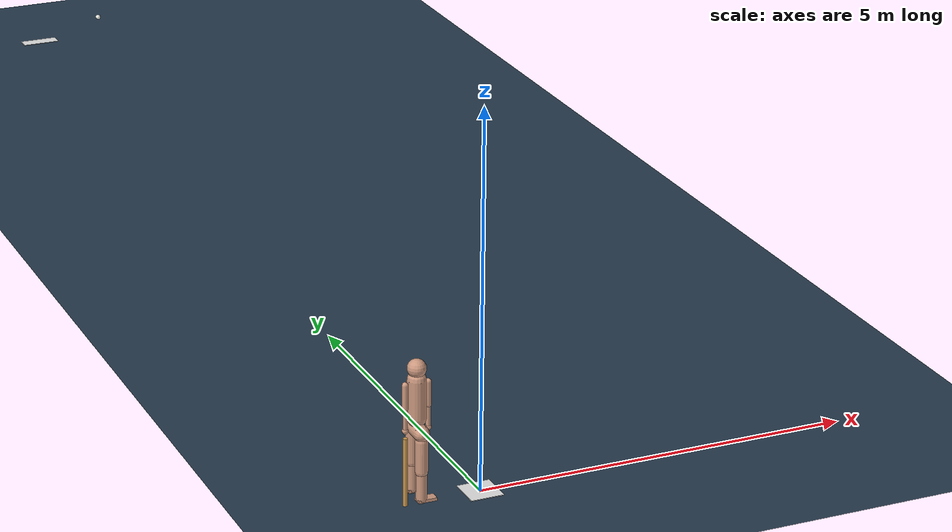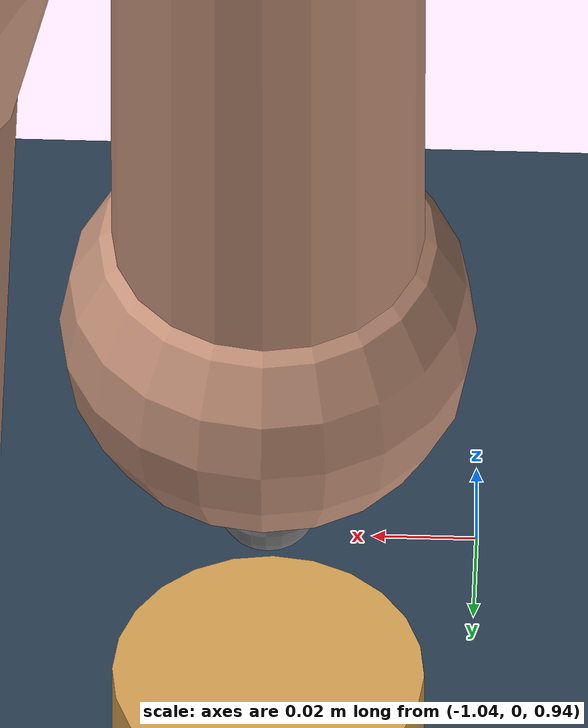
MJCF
<mujoco model="stadium_3d_humanoid">
  <compiler angle="radian" coordinate="local"/>
  <option gravity="0 0 -9.81" timestep="0.005"/>
  <size nconmax="500" njmax="1000"/>

  <asset>
    <texture type="skybox" builtin="gradient" rgb1="0.3 0.5 0.7" rgb2="0 0 0" width="512" height="512"/>
    <texture name="texplane" type="2d" builtin="checker" rgb1="0.2 0.3 0.4" rgb2="0.1 0.15 0.2" width="512" height="512"/>
    <material name="matplane" reflectance="0.3" texture="texplane" texrepeat="1 1" texuniform="true"/>
    <material name="infield_dirt_mat" rgba="0.6 0.4 0.2 1" reflectance="0.1"/>
    <material name="home_plate_mat" rgba="0.9 0.9 0.9 1" reflectance="0.2"/>
    <material name="ball_mat" rgba="0.98 0.98 0.95 1" reflectance="0.4"/>
    <material name="bat_mat" rgba="0.8 0.6 0.3 1" reflectance="0.3"/>
    <material name="human_mat" rgba="0.8 0.6 0.5 1"/>
  </asset>

  <default>
    <!-- Basic defaults for joints and geoms -->
    <joint limited="true" damping="0.5" armature="0.1"/>
    <geom friction="0.8 0.1 0.1" margin="0.001" condim="3"/>

    <!-- Humanoid geom defaults -->
    <default class="humanoid">
      <geom type="capsule" material="human_mat"/>
    </default>
  </default>

  <worldbody>
    <light directional="true" diffuse="0.8 0.8 0.8" specular="0.2 0.2 0.2" pos="0 0 10" dir="0 0 -1"/>

    <!-- Ground and field markings -->
    <geom name="ground" type="plane" size="30 30 0.1" material="matplane"/>
    <geom name="home_plate" type="box" size="0.22 0.22 0.005" pos="0 0 0.005" material="home_plate_mat"/>
    <geom name="pitcher_mound" type="box" size="0.3 0.1 0.005" pos="0 18.44 0.005" material="home_plate_mat"/>

    <!-- Cameras -->
    <camera name="pitcher_cam" pos="0 20.0 2.0" xyaxes="-1 0 0 0 0 1" fovy="60"/>
    <camera name="catcher_cam" pos="0 -2.0 1.2" xyaxes="1 0 0 0 0 1" fovy="60"/>
    <camera name="top_down_cam" pos="0 9.0 25.0" euler="0 0 0" fovy="70"/>

    <!-- Baseball -->
    <body name="baseball" pos="0 15 1.5">
      <freejoint name="ball_joint"/>
      <geom name="ball_geom" type="sphere" size="0.037" mass="0.145" material="ball_mat"/>
    </body>

    <!-- Full-body Humanoid Batter -->
    <!-- Positioned on the right side of home plate for a RHB -->
    <body name="pelvis" pos="-0.85 0 1.0">
      <!-- 6-DOF Root to allow striding and hip rotation without falling over (for kinematic control) -->
      <joint name="root_x" type="slide" axis="1 0 0" limited="false"/>
      <joint name="root_y" type="slide" axis="0 1 0" limited="false"/>
      <joint name="root_z" type="slide" axis="0 0 1" limited="false"/>
      <joint name="root_rx" type="hinge" axis="1 0 0" limited="false"/>
      <joint name="root_ry" type="hinge" axis="0 1 0" limited="false"/>
      <joint name="root_rz" type="hinge" axis="0 0 1" limited="false"/>

      <geom name="pelvis_geom" class="humanoid" size="0.1 0.15" pos="0 0 0" euler="1.57 0 0"/>

      <!-- Right Leg -->
      <body name="r_thigh" pos="0 -0.15 -0.1">
        <joint name="r_hip_x" type="hinge" axis="1 0 0" range="-1.5 1.5"/>
        <joint name="r_hip_y" type="hinge" axis="0 1 0" range="-1.5 1.5"/>
        <joint name="r_hip_z" type="hinge" axis="0 0 1" range="-1.5 1.5"/>
        <geom name="r_thigh_geom" class="humanoid" size="0.08 0.20" pos="0 0 -0.20"/>
        <body name="r_shin" pos="0 0 -0.40">
          <joint name="r_knee" type="hinge" axis="0 1 0" range="-2.5 0"/>
          <geom name="r_shin_geom" class="humanoid" size="0.07 0.18" pos="0 0 -0.18"/>
          <body name="r_foot" pos="0 0 -0.36">
            <joint name="r_ankle_x" type="hinge" axis="1 0 0" range="-0.5 0.5"/>
            <joint name="r_ankle_y" type="hinge" axis="0 1 0" range="-0.5 0.5"/>
            <geom name="r_foot_geom" type="box" size="0.12 0.06 0.02" pos="0.06 0 -0.02" material="human_mat"/>
          </body>
        </body>
      </body>

      <!-- Left Leg -->
      <body name="l_thigh" pos="0 0.15 -0.1">
        <joint name="l_hip_x" type="hinge" axis="1 0 0" range="-1.5 1.5"/>
        <joint name="l_hip_y" type="hinge" axis="0 1 0" range="-1.5 1.5"/>
        <joint name="l_hip_z" type="hinge" axis="0 0 1" range="-1.5 1.5"/>
        <geom name="l_thigh_geom" class="humanoid" size="0.08 0.20" pos="0 0 -0.20"/>
        <body name="l_shin" pos="0 0 -0.40">
          <joint name="l_knee" type="hinge" axis="0 1 0" range="-2.5 0"/>
          <geom name="l_shin_geom" class="humanoid" size="0.07 0.18" pos="0 0 -0.18"/>
          <body name="l_foot" pos="0 0 -0.36">
            <joint name="l_ankle_x" type="hinge" axis="1 0 0" range="-0.5 0.5"/>
            <joint name="l_ankle_y" type="hinge" axis="0 1 0" range="-0.5 0.5"/>
            <geom name="l_foot_geom" type="box" size="0.12 0.06 0.02" pos="0.06 0 -0.02" material="human_mat"/>
          </body>
        </body>
      </body>

      <!-- Spine (Twist) -->
      <body name="torso" pos="0 0 0.2">
        <joint name="spine_twist" type="hinge" axis="0 0 1" range="-1.5 1.5"/>
        <geom name="torso_geom" class="humanoid" size="0.12 0.25" pos="0 0 0.2"/>

        <!-- Head -->
        <body name="head" pos="0 0 0.6">
          <joint name="neck_pitch" type="hinge" axis="1 0 0" range="-0.5 0.5"/>
          <geom name="head_geom" class="humanoid" type="sphere" size="0.12" pos="0 0 0"/>
          <camera name="batter_cam" pos="0 0 0" xyaxes="1 0 0 0 0 1" fovy="90"/>
        </body>

        <!-- Right Arm (Back arm for RHB) -->
        <body name="r_upper_arm" pos="-0.15 0 0.4">
          <joint name="r_shoulder_z" type="hinge" axis="0 0 1" range="-1.5 1.5"/>
          <joint name="r_shoulder_y" type="hinge" axis="0 1 0" range="-1.5 1.5"/>
          <joint name="r_shoulder_x" type="hinge" axis="1 0 0" range="-1.5 1.5"/>
          <geom name="r_ua_geom" class="humanoid" size="0.04 0.15" pos="0 0 -0.15"/>

          <body name="r_lower_arm" pos="0 0 -0.3">
            <joint name="r_elbow" type="hinge" axis="0 1 0" range="0 2.5"/>
            <geom name="r_la_geom" class="humanoid" size="0.03 0.15" pos="0 0 -0.15"/>

            <body name="r_hand" pos="0 0 -0.3">
              <joint name="r_wrist_x" type="hinge" axis="1 0 0" range="-0.5 0.5"/>
              <joint name="r_wrist_y" type="hinge" axis="0 1 0" range="-0.5 0.5"/>
              <geom name="r_hand_geom" type="sphere" size="0.04" material="human_mat"/>

              <!-- Bat attached to Right Hand -->
              <body name="bat" pos="0 0 -0.1">
                <!-- No joints relative to hand, fixed to hand -->
                <!-- The bat points downwards slightly in neutral pose -->
                <geom name="bat_barrel" type="cylinder" size="0.03 0.45" pos="0 0 -0.45" material="bat_mat" mass="0.9"/>
                <!-- Site for the left hand to grab onto -->
                <site name="bat_grip_left" pos="0 0 0.05" size="0.01"/>
              </body>
            </body>
          </body>
        </body>

        <!-- Left Arm (Front arm for RHB) -->
        <body name="l_upper_arm" pos="0.15 0 0.4">
          <joint name="l_shoulder_z" type="hinge" axis="0 0 1" range="-1.5 1.5"/>
          <joint name="l_shoulder_y" type="hinge" axis="0 1 0" range="-1.5 1.5"/>
          <joint name="l_shoulder_x" type="hinge" axis="1 0 0" range="-1.5 1.5"/>
          <geom name="l_ua_geom" class="humanoid" size="0.04 0.15" pos="0 0 -0.15"/>

          <body name="l_lower_arm" pos="0 0 -0.3">
            <joint name="l_elbow" type="hinge" axis="0 1 0" range="0 2.5"/>
            <geom name="l_la_geom" class="humanoid" size="0.03 0.15" pos="0 0 -0.15"/>

            <body name="l_hand" pos="0 0 -0.3">
              <!-- Site to connect to the bat -->
              <site name="l_hand_grip" pos="0 0 0" size="0.01"/>
              <geom name="l_hand_geom" type="sphere" size="0.04" material="human_mat"/>
            </body>
          </body>
        </body>

      </body>
    </body>
  </worldbody>

  <equality>
    <!-- Connect left hand to the bat to form a closed kinematic chain (2-handed grip) -->
    <!-- The constraint brings l_hand_grip to bat_grip_left -->
    <connect name="left_hand_to_bat" site1="l_hand_grip" site2="bat_grip_left"/>
  </equality>

  <actuator>
    <!-- Add basic position actuators for kinematic control -->
    <position name="a_spine_twist" joint="spine_twist" kp="500"/>
    <position name="a_r_shoulder_z" joint="r_shoulder_z" kp="500"/>
    <position name="a_r_shoulder_y" joint="r_shoulder_y" kp="500"/>
    <position name="a_r_shoulder_x" joint="r_shoulder_x" kp="500"/>
    <position name="a_r_elbow" joint="r_elbow" kp="500"/>
    <position name="a_r_wrist_x" joint="r_wrist_x" kp="500"/>
    <position name="a_r_wrist_y" joint="r_wrist_y" kp="500"/>

    <!-- Left arm actuators REMOVED so the equality constraint can naturally pull the arm to the bat -->

    <!-- Leg actuators -->
    <position name="a_root_x" joint="root_x" kp="1000"/>
    <position name="a_root_y" joint="root_y" kp="1000"/>
    <position name="a_root_z" joint="root_z" kp="1000"/>
    <position name="a_root_rx" joint="root_rx" kp="1000"/>
    <position name="a_root_ry" joint="root_ry" kp="1000"/>
    <position name="a_root_rz" joint="root_rz" kp="1000"/>

    <position name="a_r_hip_x" joint="r_hip_x" kp="500"/>
    <position name="a_r_hip_y" joint="r_hip_y" kp="500"/>
    <position name="a_r_hip_z" joint="r_hip_z" kp="500"/>
    <position name="a_r_knee" joint="r_knee" kp="500"/>
    <position name="a_l_hip_x" joint="l_hip_x" kp="500"/>
    <position name="a_l_hip_y" joint="l_hip_y" kp="500"/>
    <position name="a_l_hip_z" joint="l_hip_z" kp="500"/>
    <position name="a_l_knee" joint="l_knee" kp="500"/>
  </actuator>

</mujoco>
